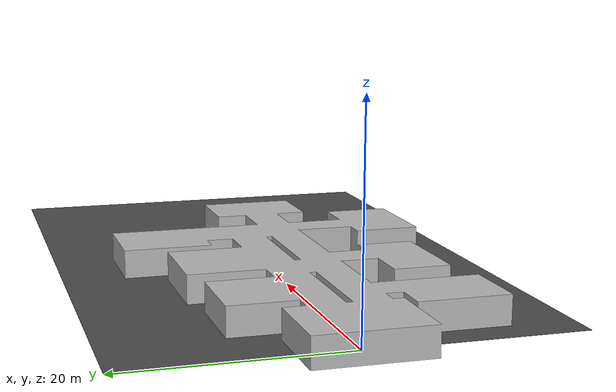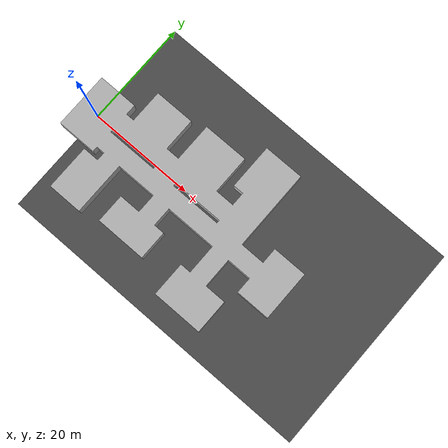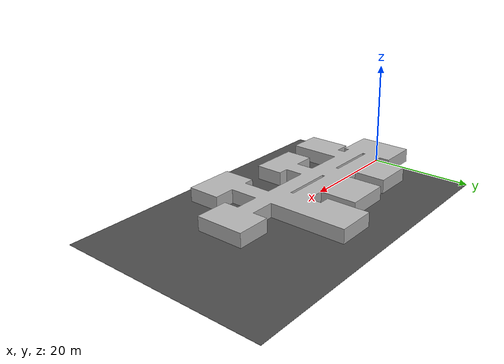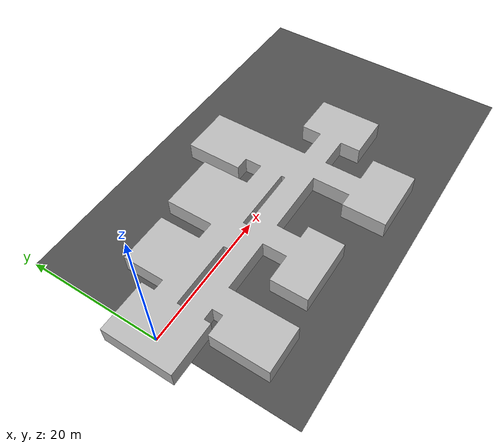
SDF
<?xml version="1.0" ?>
<sdf version="1.5">
  <world name="default">
    <gui>
      <camera name="user_camera">
        <pose>19.5 -1.1 52 0 1.57 1.57</pose>
      </camera>
    </gui>
    <scene>
      <sky>
        <clouds>
          <speed>3</speed>
        </clouds>
      </sky>
      <ambient>0.75 0.75 0.75 1</ambient>
      <background>0.5 0.5 0.5 1</background>
      <shadows>0</shadows>
    </scene>

    <physics name='default_physics' default='0' type='ode'>
      <gravity>0 0 -9.8066</gravity>
      <ode>
        <solver>
          <type>quick</type>
          <iters>50</iters>
          <sor>1.3</sor>
          <use_dynamic_moi_rescaling>0</use_dynamic_moi_rescaling>
        </solver>
        <constraints>
          <cfm>0</cfm>
          <erp>0.2</erp>
          <contact_max_correcting_vel>100</contact_max_correcting_vel>
          <contact_surface_layer>0.001</contact_surface_layer>
        </constraints>
      </ode>
      <max_step_size>0.004</max_step_size>
      <real_time_factor>1</real_time_factor>
      <real_time_update_rate>250</real_time_update_rate>
      <magnetic_field>6.0e-6 2.3e-5 -4.2e-5</magnetic_field>
    </physics>

    <!-- A global light source -->
    <light type="directional" name="sun_1">
      <cast_shadows>false</cast_shadows>
      <pose>0 0 500 0 -0.9 0</pose>
      <diffuse>0.95 0.95 0.95 1</diffuse>
      <specular>0.4 0.4 0.4 1</specular>
      <attenuation>
        <range>2000</range>
        <constant>1.0</constant>
        <linear>0.0</linear>
        <quadratic>0.0</quadratic>
      </attenuation>
      <direction>-0.1 0.05 -1.0</direction>
    </light>
    <light type="directional" name="sun_2">
      <cast_shadows>false</cast_shadows>
      <pose>0 0 500 0 0.9 0</pose>
      <diffuse>0.95 0.95 0.95 1</diffuse>
      <specular>0.4 0.4 0.4 1</specular>
      <attenuation>
        <range>2000</range>
        <constant>1.0</constant>
        <linear>0.0</linear>
        <quadratic>0.0</quadratic>
      </attenuation>
      <direction>0.1 -0.05 -1.0</direction>
    </light>
    <!-- A ground plane -->
    <model name="ground_flat">
      <static>true</static>
      <link name="ground">
        <pose>30 0 -0.03 0 0 0</pose>
        <collision name="groundc">
          <geometry>
            <box>
              <size>60 40 0.03</size>
            </box>
          </geometry>
        </collision>
        <visual name="groundv">
          <geometry>
            <box>
              <size>60 40 0.03</size>
            </box>
          </geometry>
          <material>
            <script>
              <uri>file://media/materials/scripts/gazebo.material</uri>
              <name>Gazebo/DarkGrey</name>
            </script>
          </material>
        </visual>
      </link>
    </model>

    <include>
      <static>true</static>
      <pose>0 0 0 0 0 0</pose>
      <uri>model://2dmap</uri>
    </include>

  </world>
</sdf>

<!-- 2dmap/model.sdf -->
<sdf version="1.6">
 <model name="2dmap">
   <pose>0 0 0 0 0 0</pose>
   <static>true</static>
   <link name="link">
     <collision name="collision">
       <geometry>
         <mesh>
           <scale>1 1 1</scale>
           <uri>model://2dmap/2d.dae</uri>
         </mesh>
       </geometry>
     </collision>
     <visual name="visual">
     <cast_shadows>0</cast_shadows>
       <geometry>
         <mesh>
           <scale>1 1 1</scale>
           <uri>model://2dmap/2d.dae</uri>
         </mesh>
       </geometry>
     </visual>
   </link>
 </model>
</sdf>
